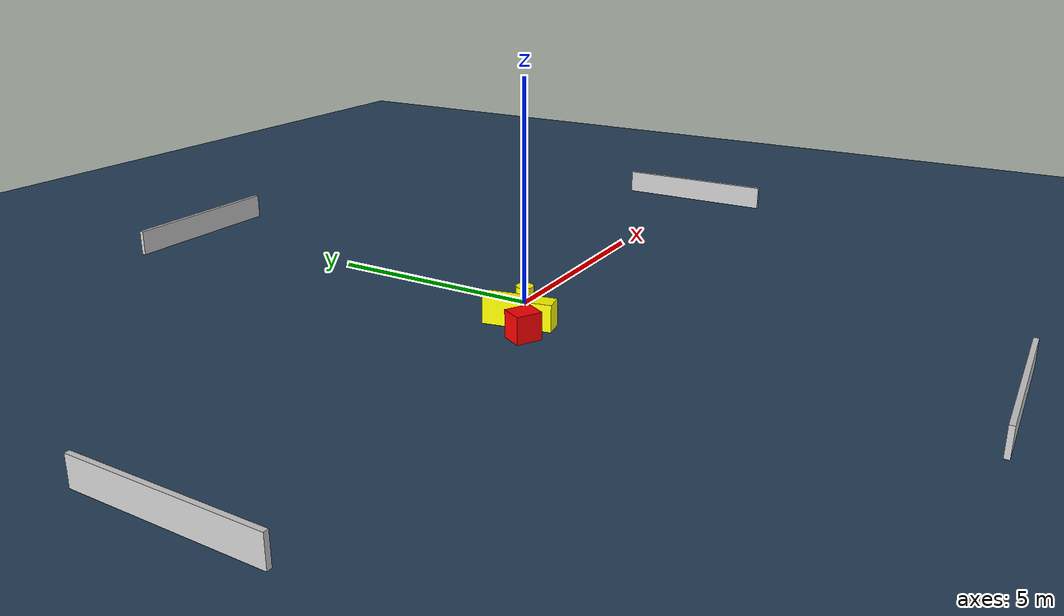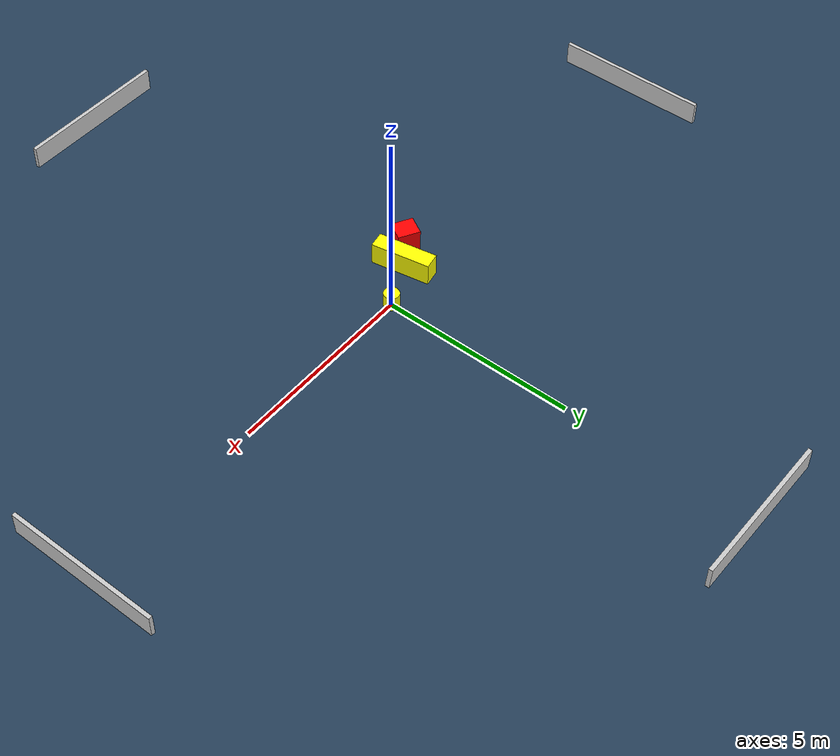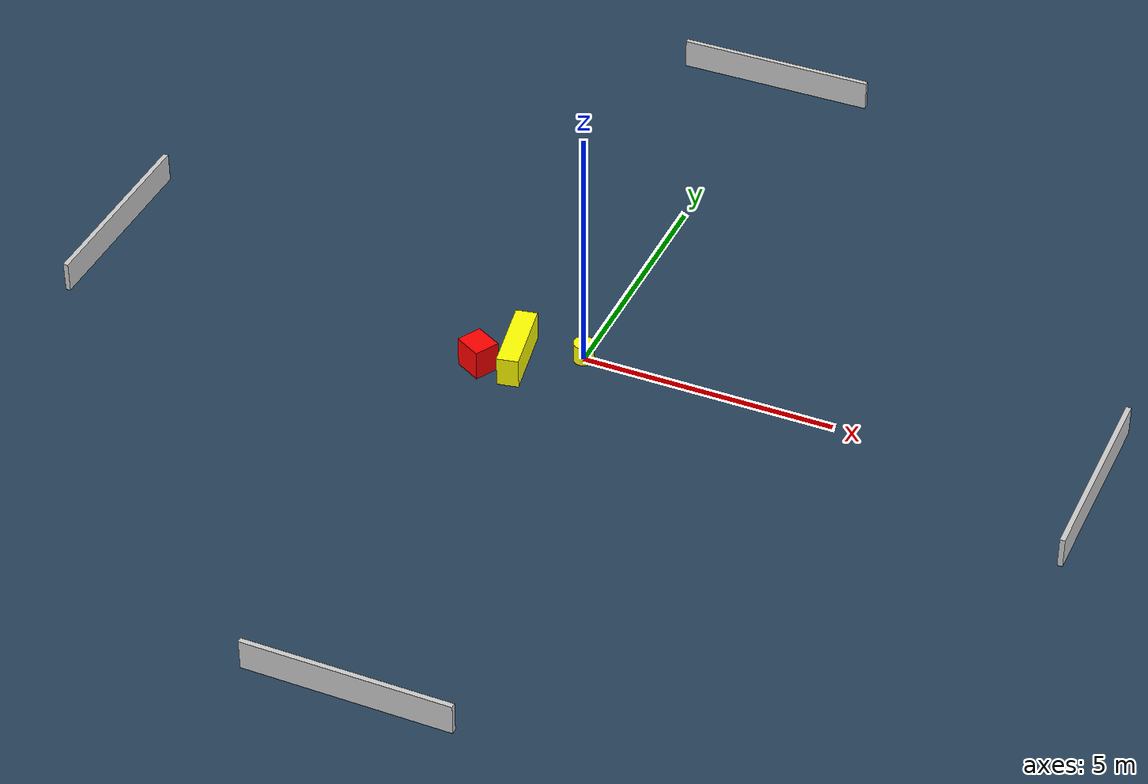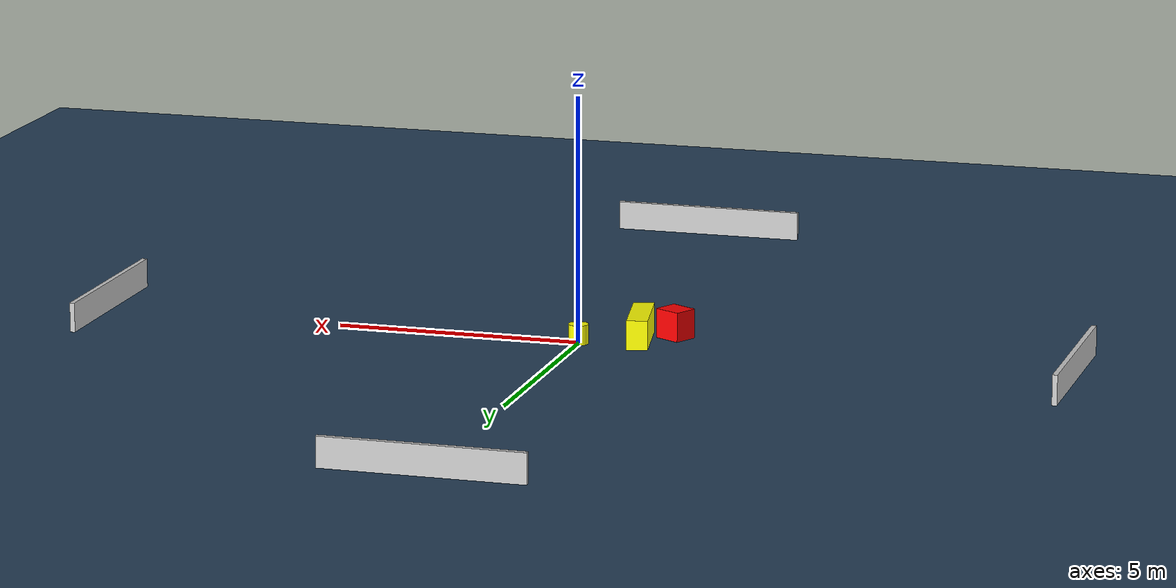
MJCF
<?xml version="1.0" ?>
<mujoco model="generated_environment">
  <option timestep="0.01" integrator="RK4" cone="elliptic"/>
  <default>
    <geom density="1"/>
  </default>
  <asset>
    <texture builtin="gradient" height="3072" name="skybox" rgb1="0.3 0.5 0.7" rgb2="0 0 0" type="skybox" width="512"/>
    <texture builtin="checker" height="300" name="groundplane" rgb1="0.2 0.3 0.4" rgb2="0.1 0.2 0.3" type="2d" width="300"/>
    <material name="groundplane" reflectance="0.2" texrepeat="5 5" texture="groundplane"/>
  </asset>
  <worldbody>
    <light dir="0 0 -1" directional="true" pos="0 0 1.5"/>
    <geom condim="3" friction="0.5 0.005 0.001" material="groundplane" name="floor" pos="0 0 0" size="0 0 0.05" type="plane"/>
    <body name="walls">
      <geom name="wall_1" condim="4" pos="-10.0 0.0 0.3" rgba="0.800000011920929 0.800000011920929 0.800000011920929 1.0" size="0.05 2.0 0.3" type="box"/>
      <geom name="wall_2" condim="4" pos="10.0 0.0 0.3" rgba="0.800000011920929 0.800000011920929 0.800000011920929 1.0" size="0.05 2.0 0.3" type="box"/>
      <geom name="wall_3" condim="4" pos="0.0 -10.0 0.3" rgba="0.800000011920929 0.800000011920929 0.800000011920929 1.0" size="2.0 0.05 0.3" type="box"/>
      <geom name="wall_4" condim="4" pos="0.0 10.0 0.3" rgba="0.800000011920929 0.800000011920929 0.800000011920929 1.0" size="2.0 0.05 0.3" type="box"/>
    </body>
    <body name="robot">
      <joint name="joint_x" type="slide" pos="0 0 0" axis="1 0 0"/>
      <joint name="joint_y" type="slide" pos="0 0 0" axis="0 1 0"/>
      <geom name="robot" type="cylinder" pos="0.0 0.0 0.2" size="0.2 0.2 0.0" mass="5.0" friction="1.0 0.005 0.0001" condim="4" rgba="1.0 1.0 0.0 1.0"/>
    </body>
    <body name="obstacle_1_movable">
      <geom name="obstacle_1_movable" condim="4" pos="-1.1294299142995965 -0.5390485279463005 0.3" euler="0 0 100.46446457000468" friction="0.0 0.005 0.001" rgba="1.0 1.0 0.0 1.0" size="0.762343236223264 0.2115619093739728 0.3" type="box" mass="0.1"/>
      <joint type="free"/>
    </body>
    <body name="obstacle_2_static">
      <geom name="obstacle_2_static" condim="4" pos="-1.7317674541219938 -0.9823834406465759 0.3" euler="0 0 331.02699143664927" friction="0.0 0.005 0.001" rgba="1.0 0.0 0.0 1.0" size="0.28870995208844696 0.25452077172077225 0.3" type="box"/>
    </body>
  </worldbody>
  <actuator>
    <motor name="actuator_x" joint="joint_x" gear="1" ctrlrange="-1 1"/>
    <motor name="actuator_y" joint="joint_y" gear="1" ctrlrange="-1 1"/>
  </actuator>
</mujoco>
